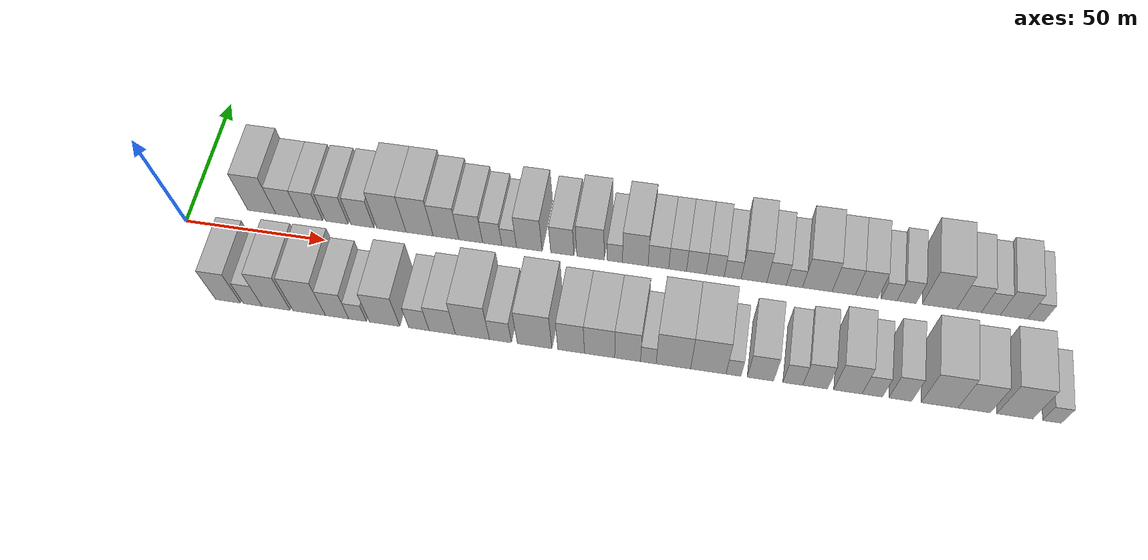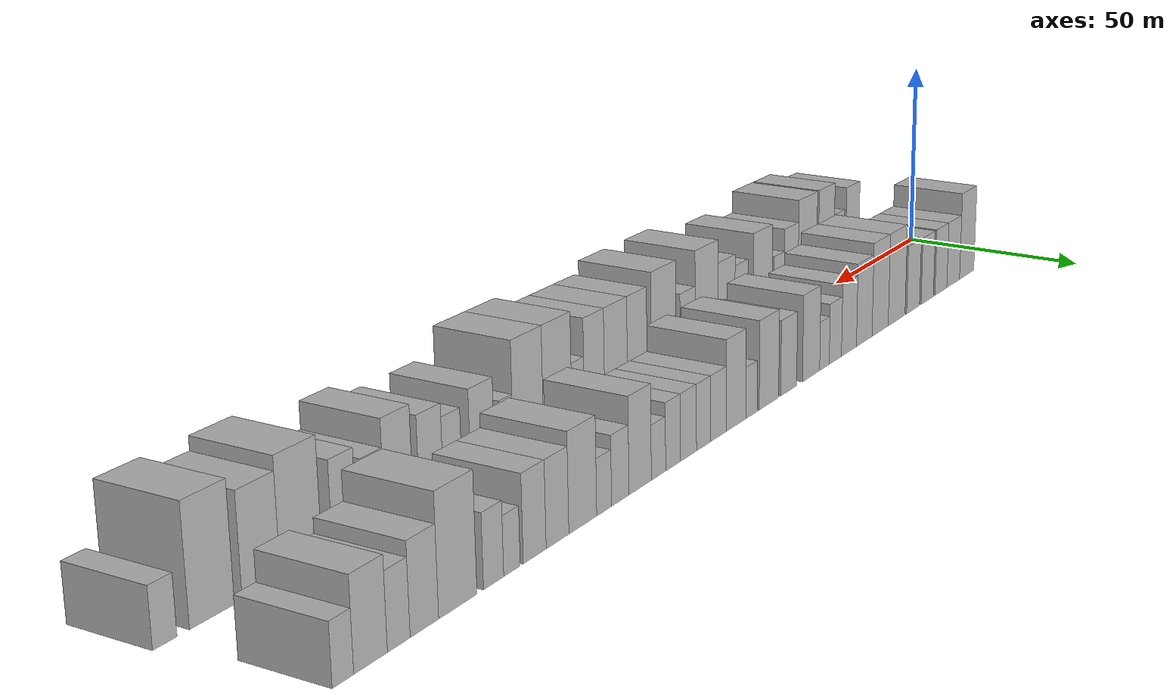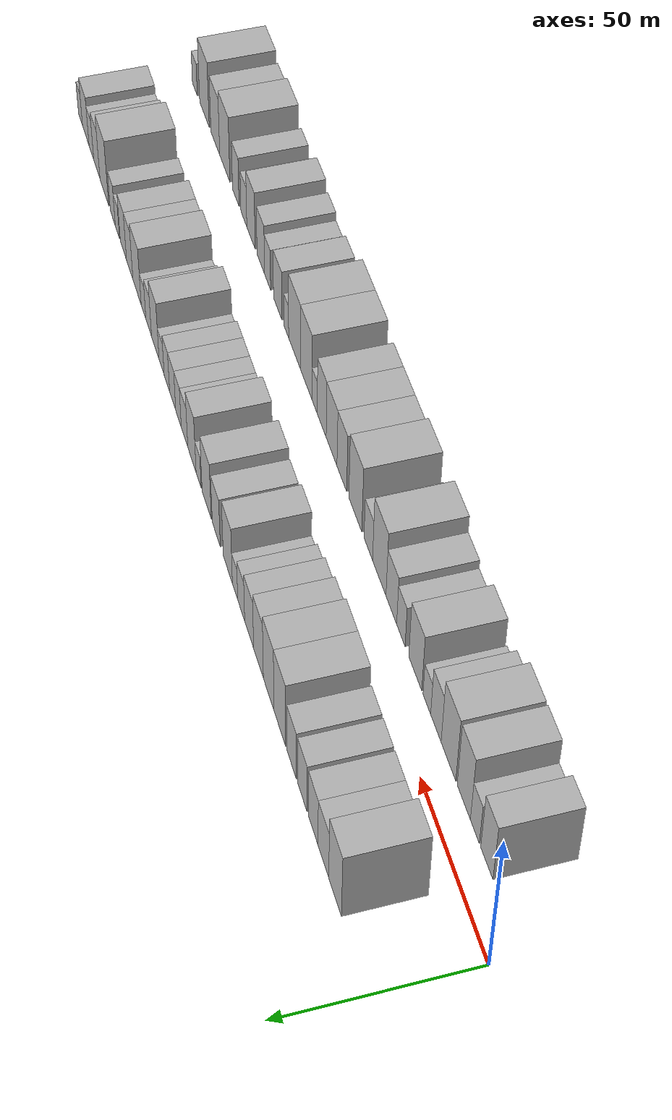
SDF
<sdf version="1.6">
 <world name="default">
  <scene>
   <sky><clouds><speed>12</speed></clouds></sky>
   <ambient>0.4 0.4 0.4 1</ambient>
   <background>0.7 0.7 0.7 1</background>
   <shadows>1</shadows>
  </scene>
  <gravity>0 0 -9.8066</gravity>
  <magnetic_field>6e-06 2.3e-05 -4.2e-05</magnetic_field>
  <physics default="0" name="default_physics" type="ode">
   <ode>
    <solver>
     <type>quick</type>
     <iters>10</iters>
     <sor>1.0</sor>
     <use_dynamic_moi_rescaling>0</use_dynamic_moi_rescaling>
    </solver>
    <constraints>
     <cfm>0</cfm>
     <erp>0.2</erp>
     <contact_max_correcting_vel>100</contact_max_correcting_vel>
     <contact_surface_layer>0.001</contact_surface_layer>
    </constraints>
   </ode>
   <max_step_size>0.004</max_step_size>
   <real_time_factor>1</real_time_factor>
   <real_time_update_rate>250</real_time_update_rate>
  </physics>
  <light name="sun" type="directional">
   <pose>0 0 10 0 0 0</pose>
   <diffuse>0.8 0.8 0.8 1</diffuse>
   <specular>0.2 0.2 0.2 1</specular>
   <attenuation>
    <range>1000</range>
    <constant>0.9</constant>
    <linear>0.01</linear>
    <quadratic>0.001</quadratic>
   </attenuation>
   <direction>-0.5 0.1 -0.9</direction>
  </light>
  <model name="building_1">
   <static>1</static>
   <pose>25.0952 17.5000 0 0.000000 0.000000 1.570796</pose>
   <link name="link">
    <pose>0 0 12.00 0 0 0</pose>
    <collision name="collision"><geometry><box><size>20.0000 10.1904 24.0000</size></box></geometry></collision>
    <visual name="visual">
     <cast_shadows>0</cast_shadows>
     <geometry><box><size>20.0000 10.1904 24.0000</size></box></geometry>
     <material>
      <script>
       <uri>model://HANNAS_wall/materials/scripts</uri>
       <uri>model://HANNAS_wall/materials/textures</uri>
       <name>vrc/HANNAS_wall</name>
      </script>
     </material>
    </visual>
   </link>
  </model>
  <model name="building_2">
   <static>1</static>
   <pose>34.6086 17.5000 0 0.000000 0.000000 1.570796</pose>
   <link name="link">
    <pose>0 0 9.00 0 0 0</pose>
    <collision name="collision"><geometry><box><size>20.0000 8.8364 18.0000</size></box></geometry></collision>
    <visual name="visual">
     <cast_shadows>0</cast_shadows>
     <geometry><box><size>20.0000 8.8364 18.0000</size></box></geometry>
     <material>
      <script>
       <uri>model://HANNAS_wall/materials/scripts</uri>
       <uri>model://HANNAS_wall/materials/textures</uri>
       <name>vrc/HANNAS_wall</name>
      </script>
     </material>
    </visual>
   </link>
  </model>
  <model name="building_3">
   <static>1</static>
   <pose>43.0522 17.5000 0 0.000000 0.000000 1.570796</pose>
   <link name="link">
    <pose>0 0 9.00 0 0 0</pose>
    <collision name="collision"><geometry><box><size>20.0000 8.0508 18.0000</size></box></geometry></collision>
    <visual name="visual">
     <cast_shadows>0</cast_shadows>
     <geometry><box><size>20.0000 8.0508 18.0000</size></box></geometry>
     <material>
      <script>
       <uri>model://HANNAS_wall/materials/scripts</uri>
       <uri>model://HANNAS_wall/materials/textures</uri>
       <name>vrc/HANNAS_wall</name>
      </script>
     </material>
    </visual>
   </link>
  </model>
  <model name="building_4">
   <static>1</static>
   <pose>52.1330 17.5000 0 0.000000 0.000000 1.570796</pose>
   <link name="link">
    <pose>0 0 9.00 0 0 0</pose>
    <collision name="collision"><geometry><box><size>20.0000 8.1108 18.0000</size></box></geometry></collision>
    <visual name="visual">
     <cast_shadows>0</cast_shadows>
     <geometry><box><size>20.0000 8.1108 18.0000</size></box></geometry>
     <material>
      <script>
       <uri>model://HANNAS_wall/materials/scripts</uri>
       <uri>model://HANNAS_wall/materials/textures</uri>
       <name>vrc/HANNAS_wall</name>
      </script>
     </material>
    </visual>
   </link>
  </model>
  <model name="building_5">
   <static>1</static>
   <pose>61.3012 17.5000 0 0.000000 0.000000 1.570796</pose>
   <link name="link">
    <pose>0 0 9.00 0 0 0</pose>
    <collision name="collision"><geometry><box><size>20.0000 8.2256 18.0000</size></box></geometry></collision>
    <visual name="visual">
     <cast_shadows>0</cast_shadows>
     <geometry><box><size>20.0000 8.2256 18.0000</size></box></geometry>
     <material>
      <script>
       <uri>model://HANNAS_wall/materials/scripts</uri>
       <uri>model://HANNAS_wall/materials/textures</uri>
       <name>vrc/HANNAS_wall</name>
      </script>
     </material>
    </visual>
   </link>
  </model>
  <model name="building_6">
   <static>1</static>
   <pose>71.6236 17.5000 0 0.000000 0.000000 1.570796</pose>
   <link name="link">
    <pose>0 0 12.00 0 0 0</pose>
    <collision name="collision"><geometry><box><size>20.0000 10.4191 24.0000</size></box></geometry></collision>
    <visual name="visual">
     <cast_shadows>0</cast_shadows>
     <geometry><box><size>20.0000 10.4191 24.0000</size></box></geometry>
     <material>
      <script>
       <uri>model://HANNAS_wall/materials/scripts</uri>
       <uri>model://HANNAS_wall/materials/textures</uri>
       <name>vrc/HANNAS_wall</name>
      </script>
     </material>
    </visual>
   </link>
  </model>
  <model name="building_7">
   <static>1</static>
   <pose>81.6582 17.5000 0 0.000000 0.000000 1.570796</pose>
   <link name="link">
    <pose>0 0 12.00 0 0 0</pose>
    <collision name="collision"><geometry><box><size>20.0000 9.6503 24.0000</size></box></geometry></collision>
    <visual name="visual">
     <cast_shadows>0</cast_shadows>
     <geometry><box><size>20.0000 9.6503 24.0000</size></box></geometry>
     <material>
      <script>
       <uri>model://HANNAS_wall/materials/scripts</uri>
       <uri>model://HANNAS_wall/materials/textures</uri>
       <name>vrc/HANNAS_wall</name>
      </script>
     </material>
    </visual>
   </link>
  </model>
  <model name="building_8">
   <static>1</static>
   <pose>91.0004 17.5000 0 0.000000 0.000000 1.570796</pose>
   <link name="link">
    <pose>0 0 10.50 0 0 0</pose>
    <collision name="collision"><geometry><box><size>20.0000 9.0341 21.0000</size></box></geometry></collision>
    <visual name="visual">
     <cast_shadows>0</cast_shadows>
     <geometry><box><size>20.0000 9.0341 21.0000</size></box></geometry>
     <material>
      <script>
       <uri>model://HANNAS_wall/materials/scripts</uri>
       <uri>model://HANNAS_wall/materials/textures</uri>
       <name>vrc/HANNAS_wall</name>
      </script>
     </material>
    </visual>
   </link>
  </model>
  <model name="building_9">
   <static>1</static>
   <pose>99.7317 17.5000 0 0.000000 0.000000 1.570796</pose>
   <link name="link">
    <pose>0 0 9.00 0 0 0</pose>
    <collision name="collision"><geometry><box><size>20.0000 8.4285 18.0000</size></box></geometry></collision>
    <visual name="visual">
     <cast_shadows>0</cast_shadows>
     <geometry><box><size>20.0000 8.4285 18.0000</size></box></geometry>
     <material>
      <script>
       <uri>model://HANNAS_wall/materials/scripts</uri>
       <uri>model://HANNAS_wall/materials/textures</uri>
       <name>vrc/HANNAS_wall</name>
      </script>
     </material>
    </visual>
   </link>
  </model>
  <model name="building_10">
   <static>1</static>
   <pose>107.3018 17.5000 0 0.000000 0.000000 1.570796</pose>
   <link name="link">
    <pose>0 0 7.50 0 0 0</pose>
    <collision name="collision"><geometry><box><size>20.0000 6.7117 15.0000</size></box></geometry></collision>
    <visual name="visual">
     <cast_shadows>0</cast_shadows>
     <geometry><box><size>20.0000 6.7117 15.0000</size></box></geometry>
     <material>
      <script>
       <uri>model://HANNAS_wall/materials/scripts</uri>
       <uri>model://HANNAS_wall/materials/textures</uri>
       <name>vrc/HANNAS_wall</name>
      </script>
     </material>
    </visual>
   </link>
  </model>
  <model name="building_11">
   <static>1</static>
   <pose>113.2352 17.5000 0 0.000000 0.000000 1.570796</pose>
   <link name="link">
    <pose>0 0 6.00 0 0 0</pose>
    <collision name="collision"><geometry><box><size>20.0000 5.1550 12.0000</size></box></geometry></collision>
    <visual name="visual">
     <cast_shadows>0</cast_shadows>
     <geometry><box><size>20.0000 5.1550 12.0000</size></box></geometry>
     <material>
      <script>
       <uri>model://HANNAS_wall/materials/scripts</uri>
       <uri>model://HANNAS_wall/materials/textures</uri>
       <name>vrc/HANNAS_wall</name>
      </script>
     </material>
    </visual>
   </link>
  </model>
  <model name="building_12">
   <static>1</static>
   <pose>120.2897 17.5000 0 0.000000 0.000000 1.570796</pose>
   <link name="link">
    <pose>0 0 10.50 0 0 0</pose>
    <collision name="collision"><geometry><box><size>20.0000 8.9539 21.0000</size></box></geometry></collision>
    <visual name="visual">
     <cast_shadows>0</cast_shadows>
     <geometry><box><size>20.0000 8.9539 21.0000</size></box></geometry>
     <material>
      <script>
       <uri>model://HANNAS_wall/materials/scripts</uri>
       <uri>model://HANNAS_wall/materials/textures</uri>
       <name>vrc/HANNAS_wall</name>
      </script>
     </material>
    </visual>
   </link>
  </model>
  <model name="building_13">
   <static>1</static>
   <pose>131.7899 17.5000 0 0.000000 0.000000 1.570796</pose>
   <link name="link">
    <pose>0 0 9.00 0 0 0</pose>
    <collision name="collision"><geometry><box><size>20.0000 8.0466 18.0000</size></box></geometry></collision>
    <visual name="visual">
     <cast_shadows>0</cast_shadows>
     <geometry><box><size>20.0000 8.0466 18.0000</size></box></geometry>
     <material>
      <script>
       <uri>model://HANNAS_wall/materials/scripts</uri>
       <uri>model://HANNAS_wall/materials/textures</uri>
       <name>vrc/HANNAS_wall</name>
      </script>
     </material>
    </visual>
   </link>
  </model>
  <model name="building_14">
   <static>1</static>
   <pose>141.5493 17.5000 0 0.000000 0.000000 1.570796</pose>
   <link name="link">
    <pose>0 0 10.50 0 0 0</pose>
    <collision name="collision"><geometry><box><size>20.0000 9.4722 21.0000</size></box></geometry></collision>
    <visual name="visual">
     <cast_shadows>0</cast_shadows>
     <geometry><box><size>20.0000 9.4722 21.0000</size></box></geometry>
     <material>
      <script>
       <uri>model://HANNAS_wall/materials/scripts</uri>
       <uri>model://HANNAS_wall/materials/textures</uri>
       <name>vrc/HANNAS_wall</name>
      </script>
     </material>
    </visual>
   </link>
  </model>
  <model name="building_15">
   <static>1</static>
   <pose>149.9510 17.5000 0 0.000000 0.000000 1.570796</pose>
   <link name="link">
    <pose>0 0 6.00 0 0 0</pose>
    <collision name="collision"><geometry><box><size>20.0000 5.3313 12.0000</size></box></geometry></collision>
    <visual name="visual">
     <cast_shadows>0</cast_shadows>
     <geometry><box><size>20.0000 5.3313 12.0000</size></box></geometry>
     <material>
      <script>
       <uri>model://HANNAS_wall/materials/scripts</uri>
       <uri>model://HANNAS_wall/materials/textures</uri>
       <name>vrc/HANNAS_wall</name>
      </script>
     </material>
    </visual>
   </link>
  </model>
  <model name="building_16">
   <static>1</static>
   <pose>157.0202 17.5000 0 0.000000 0.000000 1.570796</pose>
   <link name="link">
    <pose>0 0 10.50 0 0 0</pose>
    <collision name="collision"><geometry><box><size>20.0000 8.8071 21.0000</size></box></geometry></collision>
    <visual name="visual">
     <cast_shadows>0</cast_shadows>
     <geometry><box><size>20.0000 8.8071 21.0000</size></box></geometry>
     <material>
      <script>
       <uri>model://HANNAS_wall/materials/scripts</uri>
       <uri>model://HANNAS_wall/materials/textures</uri>
       <name>vrc/HANNAS_wall</name>
      </script>
     </material>
    </visual>
   </link>
  </model>
  <model name="building_17">
   <static>1</static>
   <pose>164.9590 17.5000 0 0.000000 0.000000 1.570796</pose>
   <link name="link">
    <pose>0 0 7.50 0 0 0</pose>
    <collision name="collision"><geometry><box><size>20.0000 7.0706 15.0000</size></box></geometry></collision>
    <visual name="visual">
     <cast_shadows>0</cast_shadows>
     <geometry><box><size>20.0000 7.0706 15.0000</size></box></geometry>
     <material>
      <script>
       <uri>model://HANNAS_wall/materials/scripts</uri>
       <uri>model://HANNAS_wall/materials/textures</uri>
       <name>vrc/HANNAS_wall</name>
      </script>
     </material>
    </visual>
   </link>
  </model>
  <model name="building_18">
   <static>1</static>
   <pose>171.5373 17.5000 0 0.000000 0.000000 1.570796</pose>
   <link name="link">
    <pose>0 0 7.50 0 0 0</pose>
    <collision name="collision"><geometry><box><size>20.0000 6.0860 15.0000</size></box></geometry></collision>
    <visual name="visual">
     <cast_shadows>0</cast_shadows>
     <geometry><box><size>20.0000 6.0860 15.0000</size></box></geometry>
     <material>
      <script>
       <uri>model://HANNAS_wall/materials/scripts</uri>
       <uri>model://HANNAS_wall/materials/textures</uri>
       <name>vrc/HANNAS_wall</name>
      </script>
     </material>
    </visual>
   </link>
  </model>
  <model name="building_19">
   <static>1</static>
   <pose>177.9470 17.5000 0 0.000000 0.000000 1.570796</pose>
   <link name="link">
    <pose>0 0 7.50 0 0 0</pose>
    <collision name="collision"><geometry><box><size>20.0000 6.7334 15.0000</size></box></geometry></collision>
    <visual name="visual">
     <cast_shadows>0</cast_shadows>
     <geometry><box><size>20.0000 6.7334 15.0000</size></box></geometry>
     <material>
      <script>
       <uri>model://HANNAS_wall/materials/scripts</uri>
       <uri>model://HANNAS_wall/materials/textures</uri>
       <name>vrc/HANNAS_wall</name>
      </script>
     </material>
    </visual>
   </link>
  </model>
  <model name="building_20">
   <static>1</static>
   <pose>184.3895 17.5000 0 0.000000 0.000000 1.570796</pose>
   <link name="link">
    <pose>0 0 7.50 0 0 0</pose>
    <collision name="collision"><geometry><box><size>20.0000 6.1515 15.0000</size></box></geometry></collision>
    <visual name="visual">
     <cast_shadows>0</cast_shadows>
     <geometry><box><size>20.0000 6.1515 15.0000</size></box></geometry>
     <material>
      <script>
       <uri>model://HANNAS_wall/materials/scripts</uri>
       <uri>model://HANNAS_wall/materials/textures</uri>
       <name>vrc/HANNAS_wall</name>
      </script>
     </material>
    </visual>
   </link>
  </model>
  <model name="building_21">
   <static>1</static>
   <pose>190.3441 17.5000 0 0.000000 0.000000 1.570796</pose>
   <link name="link">
    <pose>0 0 6.00 0 0 0</pose>
    <collision name="collision"><geometry><box><size>20.0000 5.7578 12.0000</size></box></geometry></collision>
    <visual name="visual">
     <cast_shadows>0</cast_shadows>
     <geometry><box><size>20.0000 5.7578 12.0000</size></box></geometry>
     <material>
      <script>
       <uri>model://HANNAS_wall/materials/scripts</uri>
       <uri>model://HANNAS_wall/materials/textures</uri>
       <name>vrc/HANNAS_wall</name>
      </script>
     </material>
    </visual>
   </link>
  </model>
  <model name="building_22">
   <static>1</static>
   <pose>197.5777 17.5000 0 0.000000 0.000000 1.570796</pose>
   <link name="link">
    <pose>0 0 10.50 0 0 0</pose>
    <collision name="collision"><geometry><box><size>20.0000 8.7095 21.0000</size></box></geometry></collision>
    <visual name="visual">
     <cast_shadows>0</cast_shadows>
     <geometry><box><size>20.0000 8.7095 21.0000</size></box></geometry>
     <material>
      <script>
       <uri>model://HANNAS_wall/materials/scripts</uri>
       <uri>model://HANNAS_wall/materials/textures</uri>
       <name>vrc/HANNAS_wall</name>
      </script>
     </material>
    </visual>
   </link>
  </model>
  <model name="building_23">
   <static>1</static>
   <pose>205.2382 17.5000 0 0.000000 0.000000 1.570796</pose>
   <link name="link">
    <pose>0 0 7.50 0 0 0</pose>
    <collision name="collision"><geometry><box><size>20.0000 6.6115 15.0000</size></box></geometry></collision>
    <visual name="visual">
     <cast_shadows>0</cast_shadows>
     <geometry><box><size>20.0000 6.6115 15.0000</size></box></geometry>
     <material>
      <script>
       <uri>model://HANNAS_wall/materials/scripts</uri>
       <uri>model://HANNAS_wall/materials/textures</uri>
       <name>vrc/HANNAS_wall</name>
      </script>
     </material>
    </visual>
   </link>
  </model>
  <model name="building_24">
   <static>1</static>
   <pose>211.2773 17.5000 0 0.000000 0.000000 1.570796</pose>
   <link name="link">
    <pose>0 0 6.00 0 0 0</pose>
    <collision name="collision"><geometry><box><size>20.0000 5.4667 12.0000</size></box></geometry></collision>
    <visual name="visual">
     <cast_shadows>0</cast_shadows>
     <geometry><box><size>20.0000 5.4667 12.0000</size></box></geometry>
     <material>
      <script>
       <uri>model://HANNAS_wall/materials/scripts</uri>
       <uri>model://HANNAS_wall/materials/textures</uri>
       <name>vrc/HANNAS_wall</name>
      </script>
     </material>
    </visual>
   </link>
  </model>
  <model name="building_25">
   <static>1</static>
   <pose>218.9881 17.5000 0 0.000000 0.000000 1.570796</pose>
   <link name="link">
    <pose>0 0 10.50 0 0 0</pose>
    <collision name="collision"><geometry><box><size>20.0000 9.9550 21.0000</size></box></geometry></collision>
    <visual name="visual">
     <cast_shadows>0</cast_shadows>
     <geometry><box><size>20.0000 9.9550 21.0000</size></box></geometry>
     <material>
      <script>
       <uri>model://HANNAS_wall/materials/scripts</uri>
       <uri>model://HANNAS_wall/materials/textures</uri>
       <name>vrc/HANNAS_wall</name>
      </script>
     </material>
    </visual>
   </link>
  </model>
  <model name="building_26">
   <static>1</static>
   <pose>227.8656 17.5000 0 0.000000 0.000000 1.570796</pose>
   <link name="link">
    <pose>0 0 9.00 0 0 0</pose>
    <collision name="collision"><geometry><box><size>20.0000 7.7998 18.0000</size></box></geometry></collision>
    <visual name="visual">
     <cast_shadows>0</cast_shadows>
     <geometry><box><size>20.0000 7.7998 18.0000</size></box></geometry>
     <material>
      <script>
       <uri>model://HANNAS_wall/materials/scripts</uri>
       <uri>model://HANNAS_wall/materials/textures</uri>
       <name>vrc/HANNAS_wall</name>
      </script>
     </material>
    </visual>
   </link>
  </model>
  <model name="building_27">
   <static>1</static>
   <pose>235.5774 17.5000 0 0.000000 0.000000 1.570796</pose>
   <link name="link">
    <pose>0 0 9.00 0 0 0</pose>
    <collision name="collision"><geometry><box><size>20.0000 7.6239 18.0000</size></box></geometry></collision>
    <visual name="visual">
     <cast_shadows>0</cast_shadows>
     <geometry><box><size>20.0000 7.6239 18.0000</size></box></geometry>
     <material>
      <script>
       <uri>model://HANNAS_wall/materials/scripts</uri>
       <uri>model://HANNAS_wall/materials/textures</uri>
       <name>vrc/HANNAS_wall</name>
      </script>
     </material>
    </visual>
   </link>
  </model>
  <model name="building_28">
   <static>1</static>
   <pose>243.0308 17.5000 0 0.000000 0.000000 1.570796</pose>
   <link name="link">
    <pose>0 0 6.00 0 0 0</pose>
    <collision name="collision"><geometry><box><size>20.0000 5.2829 12.0000</size></box></geometry></collision>
    <visual name="visual">
     <cast_shadows>0</cast_shadows>
     <geometry><box><size>20.0000 5.2829 12.0000</size></box></geometry>
     <material>
      <script>
       <uri>model://HANNAS_wall/materials/scripts</uri>
       <uri>model://HANNAS_wall/materials/textures</uri>
       <name>vrc/HANNAS_wall</name>
      </script>
     </material>
    </visual>
   </link>
  </model>
  <model name="building_29">
   <static>1</static>
   <pose>248.8422 17.5000 0 0.000000 0.000000 1.570796</pose>
   <link name="link">
    <pose>0 0 7.50 0 0 0</pose>
    <collision name="collision"><geometry><box><size>20.0000 6.3400 15.0000</size></box></geometry></collision>
    <visual name="visual">
     <cast_shadows>0</cast_shadows>
     <geometry><box><size>20.0000 6.3400 15.0000</size></box></geometry>
     <material>
      <script>
       <uri>model://HANNAS_wall/materials/scripts</uri>
       <uri>model://HANNAS_wall/materials/textures</uri>
       <name>vrc/HANNAS_wall</name>
      </script>
     </material>
    </visual>
   </link>
  </model>
  <model name="building_30">
   <static>1</static>
   <pose>259.7139 17.5000 0 0.000000 0.000000 1.570796</pose>
   <link name="link">
    <pose>0 0 12.00 0 0 0</pose>
    <collision name="collision"><geometry><box><size>20.0000 11.4034 24.0000</size></box></geometry></collision>
    <visual name="visual">
     <cast_shadows>0</cast_shadows>
     <geometry><box><size>20.0000 11.4034 24.0000</size></box></geometry>
     <material>
      <script>
       <uri>model://HANNAS_wall/materials/scripts</uri>
       <uri>model://HANNAS_wall/materials/textures</uri>
       <name>vrc/HANNAS_wall</name>
      </script>
     </material>
    </visual>
   </link>
  </model>
  <model name="building_31">
   <static>1</static>
   <pose>269.4701 17.5000 0 0.000000 0.000000 1.570796</pose>
   <link name="link">
    <pose>0 0 9.00 0 0 0</pose>
    <collision name="collision"><geometry><box><size>20.0000 8.1089 18.0000</size></box></geometry></collision>
    <visual name="visual">
     <cast_shadows>0</cast_shadows>
     <geometry><box><size>20.0000 8.1089 18.0000</size></box></geometry>
     <material>
      <script>
       <uri>model://HANNAS_wall/materials/scripts</uri>
       <uri>model://HANNAS_wall/materials/textures</uri>
       <name>vrc/HANNAS_wall</name>
      </script>
     </material>
    </visual>
   </link>
  </model>
  <model name="building_32">
   <static>1</static>
   <pose>276.6432 17.5000 0 0.000000 0.000000 1.570796</pose>
   <link name="link">
    <pose>0 0 7.50 0 0 0</pose>
    <collision name="collision"><geometry><box><size>20.0000 6.2373 15.0000</size></box></geometry></collision>
    <visual name="visual">
     <cast_shadows>0</cast_shadows>
     <geometry><box><size>20.0000 6.2373 15.0000</size></box></geometry>
     <material>
      <script>
       <uri>model://HANNAS_wall/materials/scripts</uri>
       <uri>model://HANNAS_wall/materials/textures</uri>
       <name>vrc/HANNAS_wall</name>
      </script>
     </material>
    </visual>
   </link>
  </model>
  <model name="building_33">
   <static>1</static>
   <pose>284.2250 17.5000 0 0.000000 0.000000 1.570796</pose>
   <link name="link">
    <pose>0 0 9.00 0 0 0</pose>
    <collision name="collision"><geometry><box><size>20.0000 8.9263 18.0000</size></box></geometry></collision>
    <visual name="visual">
     <cast_shadows>0</cast_shadows>
     <geometry><box><size>20.0000 8.9263 18.0000</size></box></geometry>
     <material>
      <script>
       <uri>model://HANNAS_wall/materials/scripts</uri>
       <uri>model://HANNAS_wall/materials/textures</uri>
       <name>vrc/HANNAS_wall</name>
      </script>
     </material>
    </visual>
   </link>
  </model>
  <model name="building_34">
   <static>1</static>
   <pose>291.4401 17.5000 0 0.000000 0.000000 1.570796</pose>
   <link name="link">
    <pose>0 0 6.00 0 0 0</pose>
    <collision name="collision"><geometry><box><size>20.0000 5.5039 12.0000</size></box></geometry></collision>
    <visual name="visual">
     <cast_shadows>0</cast_shadows>
     <geometry><box><size>20.0000 5.5039 12.0000</size></box></geometry>
     <material>
      <script>
       <uri>model://HANNAS_wall/materials/scripts</uri>
       <uri>model://HANNAS_wall/materials/textures</uri>
       <name>vrc/HANNAS_wall</name>
      </script>
     </material>
    </visual>
   </link>
  </model>
  <model name="building_35">
   <static>1</static>
   <pose>24.3350 -17.5000 0 0.000000 0.000000 1.570796</pose>
   <link name="link">
    <pose>0 0 10.50 0 0 0</pose>
    <collision name="collision"><geometry><box><size>20.0000 8.6700 21.0000</size></box></geometry></collision>
    <visual name="visual">
     <cast_shadows>0</cast_shadows>
     <geometry><box><size>20.0000 8.6700 21.0000</size></box></geometry>
     <material>
      <script>
       <uri>model://HANNAS_wall/materials/scripts</uri>
       <uri>model://HANNAS_wall/materials/textures</uri>
       <name>vrc/HANNAS_wall</name>
      </script>
     </material>
    </visual>
   </link>
  </model>
  <model name="building_36">
   <static>1</static>
   <pose>32.9079 -17.5000 0 0.000000 0.000000 1.570796</pose>
   <link name="link">
    <pose>0 0 7.50 0 0 0</pose>
    <collision name="collision"><geometry><box><size>20.0000 6.4759 15.0000</size></box></geometry></collision>
    <visual name="visual">
     <cast_shadows>0</cast_shadows>
     <geometry><box><size>20.0000 6.4759 15.0000</size></box></geometry>
     <material>
      <script>
       <uri>model://HANNAS_wall/materials/scripts</uri>
       <uri>model://HANNAS_wall/materials/textures</uri>
       <name>vrc/HANNAS_wall</name>
      </script>
     </material>
    </visual>
   </link>
  </model>
  <model name="building_37">
   <static>1</static>
   <pose>41.0137 -17.5000 0 0.000000 0.000000 1.570796</pose>
   <link name="link">
    <pose>0 0 12.00 0 0 0</pose>
    <collision name="collision"><geometry><box><size>20.0000 9.7356 24.0000</size></box></geometry></collision>
    <visual name="visual">
     <cast_shadows>0</cast_shadows>
     <geometry><box><size>20.0000 9.7356 24.0000</size></box></geometry>
     <material>
      <script>
       <uri>model://HANNAS_wall/materials/scripts</uri>
       <uri>model://HANNAS_wall/materials/textures</uri>
       <name>vrc/HANNAS_wall</name>
      </script>
     </material>
    </visual>
   </link>
  </model>
  <model name="building_38">
   <static>1</static>
   <pose>52.4326 -17.5000 0 0.000000 0.000000 1.570796</pose>
   <link name="link">
    <pose>0 0 12.00 0 0 0</pose>
    <collision name="collision"><geometry><box><size>20.0000 11.1023 24.0000</size></box></geometry></collision>
    <visual name="visual">
     <cast_shadows>0</cast_shadows>
     <geometry><box><size>20.0000 11.1023 24.0000</size></box></geometry>
     <material>
      <script>
       <uri>model://HANNAS_wall/materials/scripts</uri>
       <uri>model://HANNAS_wall/materials/textures</uri>
       <name>vrc/HANNAS_wall</name>
      </script>
     </material>
    </visual>
   </link>
  </model>
  <model name="building_39">
   <static>1</static>
   <pose>62.0222 -17.5000 0 0.000000 0.000000 1.570796</pose>
   <link name="link">
    <pose>0 0 9.00 0 0 0</pose>
    <collision name="collision"><geometry><box><size>20.0000 8.0769 18.0000</size></box></geometry></collision>
    <visual name="visual">
     <cast_shadows>0</cast_shadows>
     <geometry><box><size>20.0000 8.0769 18.0000</size></box></geometry>
     <material>
      <script>
       <uri>model://HANNAS_wall/materials/scripts</uri>
       <uri>model://HANNAS_wall/materials/textures</uri>
       <name>vrc/HANNAS_wall</name>
      </script>
     </material>
    </visual>
   </link>
  </model>
  <model name="building_40">
   <static>1</static>
   <pose>69.0515 -17.5000 0 0.000000 0.000000 1.570796</pose>
   <link name="link">
    <pose>0 0 6.00 0 0 0</pose>
    <collision name="collision"><geometry><box><size>20.0000 5.9817 12.0000</size></box></geometry></collision>
    <visual name="visual">
     <cast_shadows>0</cast_shadows>
     <geometry><box><size>20.0000 5.9817 12.0000</size></box></geometry>
     <material>
      <script>
       <uri>model://HANNAS_wall/materials/scripts</uri>
       <uri>model://HANNAS_wall/materials/textures</uri>
       <name>vrc/HANNAS_wall</name>
      </script>
     </material>
    </visual>
   </link>
  </model>
  <model name="building_41">
   <static>1</static>
   <pose>78.2348 -17.5000 0 0.000000 0.000000 1.570796</pose>
   <link name="link">
    <pose>0 0 10.50 0 0 0</pose>
    <collision name="collision"><geometry><box><size>20.0000 10.3848 21.0000</size></box></geometry></collision>
    <visual name="visual">
     <cast_shadows>0</cast_shadows>
     <geometry><box><size>20.0000 10.3848 21.0000</size></box></geometry>
     <material>
      <script>
       <uri>model://HANNAS_wall/materials/scripts</uri>
       <uri>model://HANNAS_wall/materials/textures</uri>
       <name>vrc/HANNAS_wall</name>
      </script>
     </material>
    </visual>
   </link>
  </model>
  <model name="building_42">
   <static>1</static>
   <pose>89.8833 -17.5000 0 0.000000 0.000000 1.570796</pose>
   <link name="link">
    <pose>0 0 7.50 0 0 0</pose>
    <collision name="collision"><geometry><box><size>20.0000 6.9122 15.0000</size></box></geometry></collision>
    <visual name="visual">
     <cast_shadows>0</cast_shadows>
     <geometry><box><size>20.0000 6.9122 15.0000</size></box></geometry>
     <material>
      <script>
       <uri>model://HANNAS_wall/materials/scripts</uri>
       <uri>model://HANNAS_wall/materials/textures</uri>
       <name>vrc/HANNAS_wall</name>
      </script>
     </material>
    </visual>
   </link>
  </model>
  <model name="building_43">
   <static>1</static>
   <pose>97.7910 -17.5000 0 0.000000 0.000000 1.570796</pose>
   <link name="link">
    <pose>0 0 9.00 0 0 0</pose>
    <collision name="collision"><geometry><box><size>20.0000 8.9032 18.0000</size></box></geometry></collision>
    <visual name="visual">
     <cast_shadows>0</cast_shadows>
     <geometry><box><size>20.0000 8.9032 18.0000</size></box></geometry>
     <material>
      <script>
       <uri>model://HANNAS_wall/materials/scripts</uri>
       <uri>model://HANNAS_wall/materials/textures</uri>
       <name>vrc/HANNAS_wall</name>
      </script>
     </material>
    </visual>
   </link>
  </model>
  <model name="building_44">
   <static>1</static>
   <pose>107.9624 -17.5000 0 0.000000 0.000000 1.570796</pose>
   <link name="link">
    <pose>0 0 12.00 0 0 0</pose>
    <collision name="collision"><geometry><box><size>20.0000 11.4395 24.0000</size></box></geometry></collision>
    <visual name="visual">
     <cast_shadows>0</cast_shadows>
     <geometry><box><size>20.0000 11.4395 24.0000</size></box></geometry>
     <material>
      <script>
       <uri>model://HANNAS_wall/materials/scripts</uri>
       <uri>model://HANNAS_wall/materials/textures</uri>
       <name>vrc/HANNAS_wall</name>
      </script>
     </material>
    </visual>
   </link>
  </model>
  <model name="building_45">
   <static>1</static>
   <pose>117.3658 -17.5000 0 0.000000 0.000000 1.570796</pose>
   <link name="link">
    <pose>0 0 7.50 0 0 0</pose>
    <collision name="collision"><geometry><box><size>20.0000 7.3675 15.0000</size></box></geometry></collision>
    <visual name="visual">
     <cast_shadows>0</cast_shadows>
     <geometry><box><size>20.0000 7.3675 15.0000</size></box></geometry>
     <material>
      <script>
       <uri>model://HANNAS_wall/materials/scripts</uri>
       <uri>model://HANNAS_wall/materials/textures</uri>
       <name>vrc/HANNAS_wall</name>
      </script>
     </material>
    </visual>
   </link>
  </model>
  <model name="building_46">
   <static>1</static>
   <pose>128.7997 -17.5000 0 0.000000 0.000000 1.570796</pose>
   <link name="link">
    <pose>0 0 12.00 0 0 0</pose>
    <collision name="collision"><geometry><box><size>20.0000 11.5002 24.0000</size></box></geometry></collision>
    <visual name="visual">
     <cast_shadows>0</cast_shadows>
     <geometry><box><size>20.0000 11.5002 24.0000</size></box></geometry>
     <material>
      <script>
       <uri>model://HANNAS_wall/materials/scripts</uri>
       <uri>model://HANNAS_wall/materials/textures</uri>
       <name>vrc/HANNAS_wall</name>
      </script>
     </material>
    </visual>
   </link>
  </model>
  <model name="building_47">
   <static>1</static>
   <pose>140.9526 -17.5000 0 0.000000 0.000000 1.570796</pose>
   <link name="link">
    <pose>0 0 10.50 0 0 0</pose>
    <collision name="collision"><geometry><box><size>20.0000 8.8056 21.0000</size></box></geometry></collision>
    <visual name="visual">
     <cast_shadows>0</cast_shadows>
     <geometry><box><size>20.0000 8.8056 21.0000</size></box></geometry>
     <material>
      <script>
       <uri>model://HANNAS_wall/materials/scripts</uri>
       <uri>model://HANNAS_wall/materials/textures</uri>
       <name>vrc/HANNAS_wall</name>
      </script>
     </material>
    </visual>
   </link>
  </model>
  <model name="building_48">
   <static>1</static>
   <pose>150.3510 -17.5000 0 0.000000 0.000000 1.570796</pose>
   <link name="link">
    <pose>0 0 10.50 0 0 0</pose>
    <collision name="collision"><geometry><box><size>20.0000 9.9912 21.0000</size></box></geometry></collision>
    <visual name="visual">
     <cast_shadows>0</cast_shadows>
     <geometry><box><size>20.0000 9.9912 21.0000</size></box></geometry>
     <material>
      <script>
       <uri>model://HANNAS_wall/materials/scripts</uri>
       <uri>model://HANNAS_wall/materials/textures</uri>
       <name>vrc/HANNAS_wall</name>
      </script>
     </material>
    </visual>
   </link>
  </model>
  <model name="building_49">
   <static>1</static>
   <pose>159.5983 -17.5000 0 0.000000 0.000000 1.570796</pose>
   <link name="link">
    <pose>0 0 10.50 0 0 0</pose>
    <collision name="collision"><geometry><box><size>20.0000 8.5033 21.0000</size></box></geometry></collision>
    <visual name="visual">
     <cast_shadows>0</cast_shadows>
     <geometry><box><size>20.0000 8.5033 21.0000</size></box></geometry>
     <material>
      <script>
       <uri>model://HANNAS_wall/materials/scripts</uri>
       <uri>model://HANNAS_wall/materials/textures</uri>
       <name>vrc/HANNAS_wall</name>
      </script>
     </material>
    </visual>
   </link>
  </model>
  <model name="building_50">
   <static>1</static>
   <pose>166.4137 -17.5000 0 0.000000 0.000000 1.570796</pose>
   <link name="link">
    <pose>0 0 6.00 0 0 0</pose>
    <collision name="collision"><geometry><box><size>20.0000 5.1275 12.0000</size></box></geometry></collision>
    <visual name="visual">
     <cast_shadows>0</cast_shadows>
     <geometry><box><size>20.0000 5.1275 12.0000</size></box></geometry>
     <material>
      <script>
       <uri>model://HANNAS_wall/materials/scripts</uri>
       <uri>model://HANNAS_wall/materials/textures</uri>
       <name>vrc/HANNAS_wall</name>
      </script>
     </material>
    </visual>
   </link>
  </model>
  <model name="building_51">
   <static>1</static>
   <pose>174.6377 -17.5000 0 0.000000 0.000000 1.570796</pose>
   <link name="link">
    <pose>0 0 12.00 0 0 0</pose>
    <collision name="collision"><geometry><box><size>20.0000 11.3205 24.0000</size></box></geometry></collision>
    <visual name="visual">
     <cast_shadows>0</cast_shadows>
     <geometry><box><size>20.0000 11.3205 24.0000</size></box></geometry>
     <material>
      <script>
       <uri>model://HANNAS_wall/materials/scripts</uri>
       <uri>model://HANNAS_wall/materials/textures</uri>
       <name>vrc/HANNAS_wall</name>
      </script>
     </material>
    </visual>
   </link>
  </model>
  <model name="building_52">
   <static>1</static>
   <pose>186.0555 -17.5000 0 0.000000 0.000000 1.570796</pose>
   <link name="link">
    <pose>0 0 12.00 0 0 0</pose>
    <collision name="collision"><geometry><box><size>20.0000 11.5151 24.0000</size></box></geometry></collision>
    <visual name="visual">
     <cast_shadows>0</cast_shadows>
     <geometry><box><size>20.0000 11.5151 24.0000</size></box></geometry>
     <material>
      <script>
       <uri>model://HANNAS_wall/materials/scripts</uri>
       <uri>model://HANNAS_wall/materials/textures</uri>
       <name>vrc/HANNAS_wall</name>
      </script>
     </material>
    </visual>
   </link>
  </model>
  <model name="building_53">
   <static>1</static>
   <pose>194.2568 -17.5000 0 0.000000 0.000000 1.570796</pose>
   <link name="link">
    <pose>0 0 6.00 0 0 0</pose>
    <collision name="collision"><geometry><box><size>20.0000 4.8873 12.0000</size></box></geometry></collision>
    <visual name="visual">
     <cast_shadows>0</cast_shadows>
     <geometry><box><size>20.0000 4.8873 12.0000</size></box></geometry>
     <material>
      <script>
       <uri>model://HANNAS_wall/materials/scripts</uri>
       <uri>model://HANNAS_wall/materials/textures</uri>
       <name>vrc/HANNAS_wall</name>
      </script>
     </material>
    </visual>
   </link>
  </model>
  <model name="building_54">
   <static>1</static>
   <pose>202.9828 -17.5000 0 0.000000 0.000000 1.570796</pose>
   <link name="link">
    <pose>0 0 9.00 0 0 0</pose>
    <collision name="collision"><geometry><box><size>20.0000 8.5646 18.0000</size></box></geometry></collision>
    <visual name="visual">
     <cast_shadows>0</cast_shadows>
     <geometry><box><size>20.0000 8.5646 18.0000</size></box></geometry>
     <material>
      <script>
       <uri>model://HANNAS_wall/materials/scripts</uri>
       <uri>model://HANNAS_wall/materials/textures</uri>
       <name>vrc/HANNAS_wall</name>
      </script>
     </material>
    </visual>
   </link>
  </model>
  <model name="building_55">
   <static>1</static>
   <pose>213.4610 -17.5000 0 0.000000 0.000000 1.570796</pose>
   <link name="link">
    <pose>0 0 7.50 0 0 0</pose>
    <collision name="collision"><geometry><box><size>20.0000 6.3919 15.0000</size></box></geometry></collision>
    <visual name="visual">
     <cast_shadows>0</cast_shadows>
     <geometry><box><size>20.0000 6.3919 15.0000</size></box></geometry>
     <material>
      <script>
       <uri>model://HANNAS_wall/materials/scripts</uri>
       <uri>model://HANNAS_wall/materials/textures</uri>
       <name>vrc/HANNAS_wall</name>
      </script>
     </material>
    </visual>
   </link>
  </model>
  <model name="building_56">
   <static>1</static>
   <pose>220.6392 -17.5000 0 0.000000 0.000000 1.570796</pose>
   <link name="link">
    <pose>0 0 9.00 0 0 0</pose>
    <collision name="collision"><geometry><box><size>20.0000 7.9646 18.0000</size></box></geometry></collision>
    <visual name="visual">
     <cast_shadows>0</cast_shadows>
     <geometry><box><size>20.0000 7.9646 18.0000</size></box></geometry>
     <material>
      <script>
       <uri>model://HANNAS_wall/materials/scripts</uri>
       <uri>model://HANNAS_wall/materials/textures</uri>
       <name>vrc/HANNAS_wall</name>
      </script>
     </material>
    </visual>
   </link>
  </model>
  <model name="building_57">
   <static>1</static>
   <pose>231.1489 -17.5000 0 0.000000 0.000000 1.570796</pose>
   <link name="link">
    <pose>0 0 10.50 0 0 0</pose>
    <collision name="collision"><geometry><box><size>20.0000 9.0548 21.0000</size></box></geometry></collision>
    <visual name="visual">
     <cast_shadows>0</cast_shadows>
     <geometry><box><size>20.0000 9.0548 21.0000</size></box></geometry>
     <material>
      <script>
       <uri>model://HANNAS_wall/materials/scripts</uri>
       <uri>model://HANNAS_wall/materials/textures</uri>
       <name>vrc/HANNAS_wall</name>
      </script>
     </material>
    </visual>
   </link>
  </model>
  <model name="building_58">
   <static>1</static>
   <pose>238.9492 -17.5000 0 0.000000 0.000000 1.570796</pose>
   <link name="link">
    <pose>0 0 7.50 0 0 0</pose>
    <collision name="collision"><geometry><box><size>20.0000 6.5456 15.0000</size></box></geometry></collision>
    <visual name="visual">
     <cast_shadows>0</cast_shadows>
     <geometry><box><size>20.0000 6.5456 15.0000</size></box></geometry>
     <material>
      <script>
       <uri>model://HANNAS_wall/materials/scripts</uri>
       <uri>model://HANNAS_wall/materials/textures</uri>
       <name>vrc/HANNAS_wall</name>
      </script>
     </material>
    </visual>
   </link>
  </model>
  <model name="building_59">
   <static>1</static>
   <pose>247.8548 -17.5000 0 0.000000 0.000000 1.570796</pose>
   <link name="link">
    <pose>0 0 9.00 0 0 0</pose>
    <collision name="collision"><geometry><box><size>20.0000 7.2658 18.0000</size></box></geometry></collision>
    <visual name="visual">
     <cast_shadows>0</cast_shadows>
     <geometry><box><size>20.0000 7.2658 18.0000</size></box></geometry>
     <material>
      <script>
       <uri>model://HANNAS_wall/materials/scripts</uri>
       <uri>model://HANNAS_wall/materials/textures</uri>
       <name>vrc/HANNAS_wall</name>
      </script>
     </material>
    </visual>
   </link>
  </model>
  <model name="building_60">
   <static>1</static>
   <pose>260.3093 -17.5000 0 0.000000 0.000000 1.570796</pose>
   <link name="link">
    <pose>0 0 12.00 0 0 0</pose>
    <collision name="collision"><geometry><box><size>20.0000 11.6432 24.0000</size></box></geometry></collision>
    <visual name="visual">
     <cast_shadows>0</cast_shadows>
     <geometry><box><size>20.0000 11.6432 24.0000</size></box></geometry>
     <material>
      <script>
       <uri>model://HANNAS_wall/materials/scripts</uri>
       <uri>model://HANNAS_wall/materials/textures</uri>
       <name>vrc/HANNAS_wall</name>
      </script>
     </material>
    </visual>
   </link>
  </model>
  <model name="building_61">
   <static>1</static>
   <pose>271.2537 -17.5000 0 0.000000 0.000000 1.570796</pose>
   <link name="link">
    <pose>0 0 10.50 0 0 0</pose>
    <collision name="collision"><geometry><box><size>20.0000 10.2456 21.0000</size></box></geometry></collision>
    <visual name="visual">
     <cast_shadows>0</cast_shadows>
     <geometry><box><size>20.0000 10.2456 21.0000</size></box></geometry>
     <material>
      <script>
       <uri>model://HANNAS_wall/materials/scripts</uri>
       <uri>model://HANNAS_wall/materials/textures</uri>
       <name>vrc/HANNAS_wall</name>
      </script>
     </material>
    </visual>
   </link>
  </model>
  <model name="building_62">
   <static>1</static>
   <pose>284.0386 -17.5000 0 0.000000 0.000000 1.570796</pose>
   <link name="link">
    <pose>0 0 12.00 0 0 0</pose>
    <collision name="collision"><geometry><box><size>20.0000 11.3242 24.0000</size></box></geometry></collision>
    <visual name="visual">
     <cast_shadows>0</cast_shadows>
     <geometry><box><size>20.0000 11.3242 24.0000</size></box></geometry>
     <material>
      <script>
       <uri>model://HANNAS_wall/materials/scripts</uri>
       <uri>model://HANNAS_wall/materials/textures</uri>
       <name>vrc/HANNAS_wall</name>
      </script>
     </material>
    </visual>
   </link>
  </model>
  <model name="building_63">
   <static>1</static>
   <pose>295.6385 -17.5000 0 0.000000 0.000000 1.570796</pose>
   <link name="link">
    <pose>0 0 6.00 0 0 0</pose>
    <collision name="collision"><geometry><box><size>20.0000 5.8757 12.0000</size></box></geometry></collision>
    <visual name="visual">
     <cast_shadows>0</cast_shadows>
     <geometry><box><size>20.0000 5.8757 12.0000</size></box></geometry>
     <material>
      <script>
       <uri>model://HANNAS_wall/materials/scripts</uri>
       <uri>model://HANNAS_wall/materials/textures</uri>
       <name>vrc/HANNAS_wall</name>
      </script>
     </material>
    </visual>
   </link>
  </model>
 </world>
</sdf>
